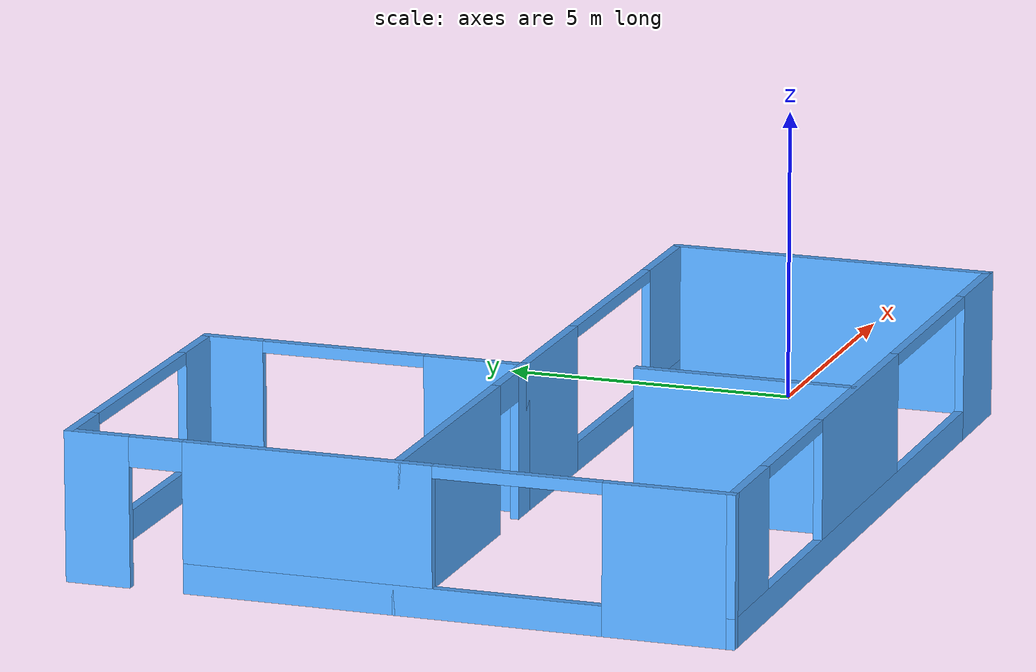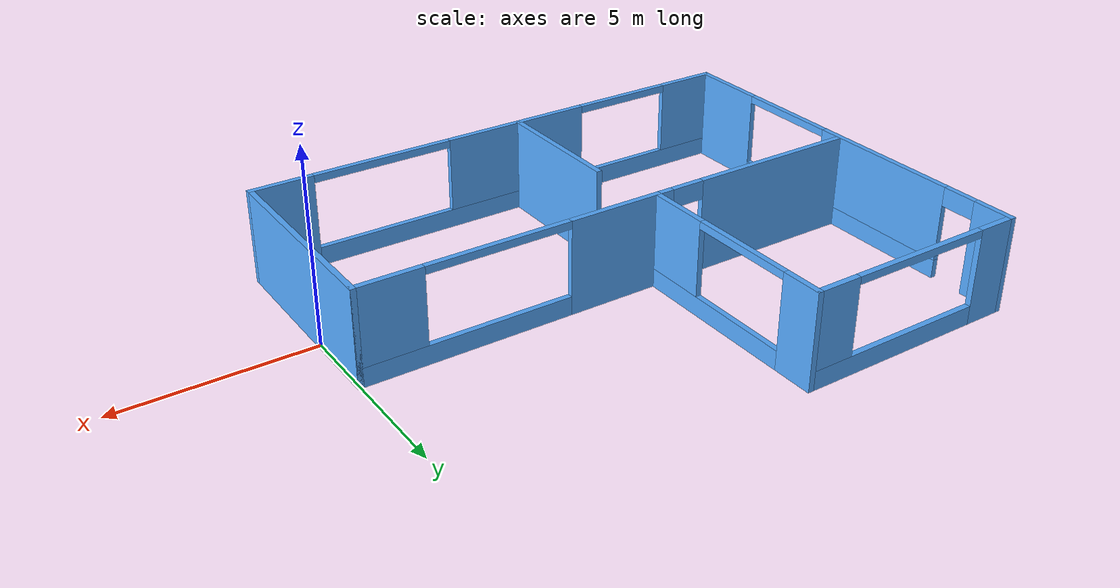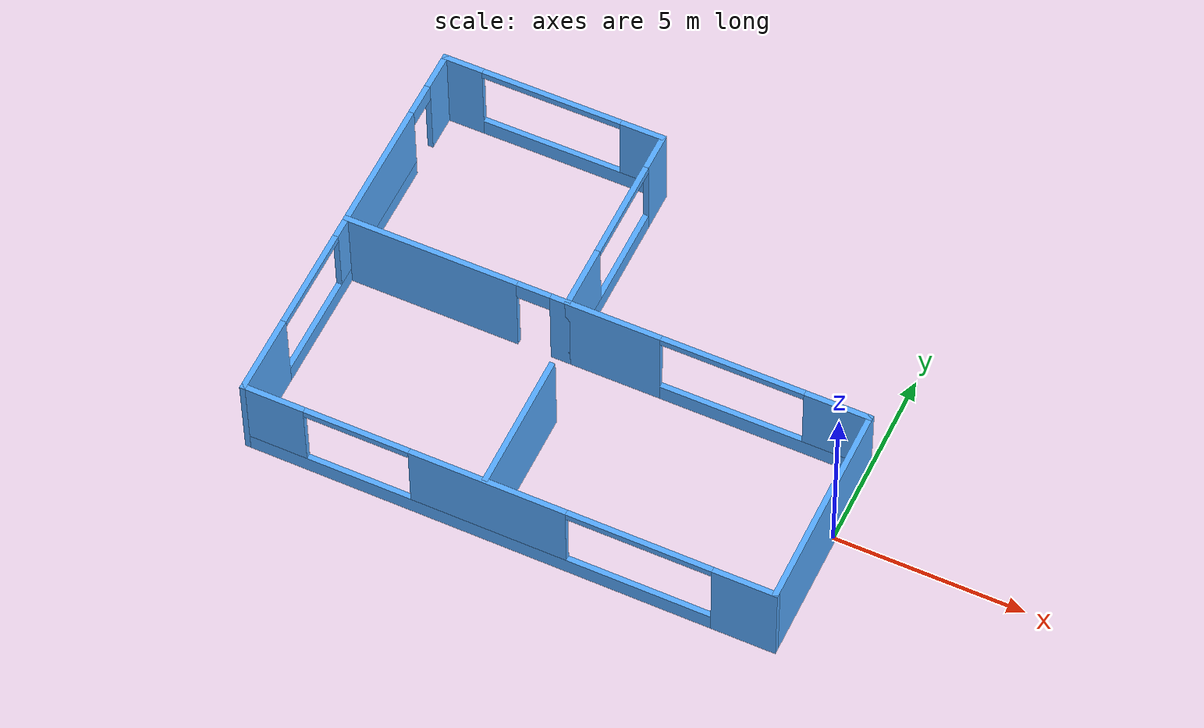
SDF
<?xml version='1.0'?>
<sdf version='1.6'>
  <model name='Building'>
    <pose frame=''>-7 2 0 0 -0 0</pose>
    <link name='Wall_0'>
      <pose frame=''>-4 5.5 0 0 -0 0</pose>
      <visual name='Wall_0_Visual_0'>
        <pose frame=''>-2.51087 0 1.25 0 -0 0</pose>
        <geometry>
          <box>
            <size>1.12826 0.15 2.5</size>
          </box>
        </geometry>
        <material>
          <script>
            <uri>file://media/materials/scripts/gazebo.material</uri>
            <name>Gazebo/Grey</name>
          </script>
          <ambient>0.333333 0.666667 1 1</ambient>
        </material>
        <meta>
          <layer>0</layer>
        </meta>
      </visual>
      <collision name='Wall_0_Collision_0'>
        <geometry>
          <box>
            <size>1.12826 0.15 2.5</size>
          </box>
        </geometry>
        <pose frame=''>-2.51087 0 1.25 0 -0 0</pose>
      </collision>
      <visual name='Wall_0_Visual_1'>
        <pose frame=''>0.564129 0 0.25 0 -0 0</pose>
        <geometry>
          <box>
            <size>5.02174 0.15 0.5</size>
          </box>
        </geometry>
        <material>
          <script>
            <uri>file://media/materials/scripts/gazebo.material</uri>
            <name>Gazebo/Grey</name>
          </script>
          <ambient>0.333333 0.666667 1 1</ambient>
        </material>
        <meta>
          <layer>0</layer>
        </meta>
      </visual>
      <collision name='Wall_0_Collision_1'>
        <geometry>
          <box>
            <size>5.02174 0.15 0.5</size>
          </box>
        </geometry>
        <pose frame=''>0.564129 0 0.25 0 -0 0</pose>
      </collision>
      <visual name='Wall_0_Visual_2'>
        <pose frame=''>2.46413 0 1.5 0 -0 0</pose>
        <geometry>
          <box>
            <size>1.22174 0.15 2</size>
          </box>
        </geometry>
        <material>
          <script>
            <uri>file://media/materials/scripts/gazebo.material</uri>
            <name>Gazebo/Grey</name>
          </script>
          <ambient>0.333333 0.666667 1 1</ambient>
        </material>
        <meta>
          <layer>0</layer>
        </meta>
      </visual>
      <collision name='Wall_0_Collision_2'>
        <geometry>
          <box>
            <size>1.22174 0.15 2</size>
          </box>
        </geometry>
        <pose frame=''>2.46413 0 1.5 0 -0 0</pose>
      </collision>
      <visual name='Wall_0_Visual_3'>
        <pose frame=''>-0.046741 0 2.4 0 -0 0</pose>
        <geometry>
          <box>
            <size>3.8 0.15 0.2</size>
          </box>
        </geometry>
        <material>
          <script>
            <uri>file://media/materials/scripts/gazebo.material</uri>
            <name>Gazebo/Grey</name>
          </script>
          <ambient>0.333333 0.666667 1 1</ambient>
        </material>
        <meta>
          <layer>0</layer>
        </meta>
      </visual>
      <collision name='Wall_0_Collision_3'>
        <geometry>
          <box>
            <size>3.8 0.15 0.2</size>
          </box>
        </geometry>
        <pose frame=''>-0.046741 0 2.4 0 -0 0</pose>
      </collision>
    </link>
    <link name='Wall_1'>
      <pose frame=''>-1 2.75 0 0 0 -1.5708</pose>
      <visual name='Wall_1_Visual_0'>
        <pose frame=''>-2.28702 0 1.25 0 -0 0</pose>
        <geometry>
          <box>
            <size>1.07597 0.15 2.5</size>
          </box>
        </geometry>
        <material>
          <script>
            <uri>file://media/materials/scripts/gazebo.material</uri>
            <name>Gazebo/Grey</name>
          </script>
          <ambient>0.333333 0.666667 1 1</ambient>
        </material>
        <meta>
          <layer>0</layer>
        </meta>
      </visual>
      <collision name='Wall_1_Collision_0'>
        <geometry>
          <box>
            <size>1.07597 0.15 2.5</size>
          </box>
        </geometry>
        <pose frame=''>-2.28702 0 1.25 0 -0 0</pose>
      </collision>
      <visual name='Wall_1_Visual_1'>
        <pose frame=''>0.537983 0 0.25 0 -0 0</pose>
        <geometry>
          <box>
            <size>4.57403 0.15 0.5</size>
          </box>
        </geometry>
        <material>
          <script>
            <uri>file://media/materials/scripts/gazebo.material</uri>
            <name>Gazebo/Grey</name>
          </script>
          <ambient>0.333333 0.666667 1 1</ambient>
        </material>
        <meta>
          <layer>0</layer>
        </meta>
      </visual>
      <collision name='Wall_1_Collision_1'>
        <geometry>
          <box>
            <size>4.57403 0.15 0.5</size>
          </box>
        </geometry>
        <pose frame=''>0.537983 0 0.25 0 -0 0</pose>
      </collision>
      <visual name='Wall_1_Visual_2'>
        <pose frame=''>1.93798 0 1.5 0 -0 0</pose>
        <geometry>
          <box>
            <size>1.77403 0.15 2</size>
          </box>
        </geometry>
        <material>
          <script>
            <uri>file://media/materials/scripts/gazebo.material</uri>
            <name>Gazebo/Grey</name>
          </script>
          <ambient>0.333333 0.666667 1 1</ambient>
        </material>
        <meta>
          <layer>0</layer>
        </meta>
      </visual>
      <collision name='Wall_1_Collision_2'>
        <geometry>
          <box>
            <size>1.77403 0.15 2</size>
          </box>
        </geometry>
        <pose frame=''>1.93798 0 1.5 0 -0 0</pose>
      </collision>
      <visual name='Wall_1_Visual_3'>
        <pose frame=''>-0.349034 0 2.4 0 -0 0</pose>
        <geometry>
          <box>
            <size>2.8 0.15 0.2</size>
          </box>
        </geometry>
        <material>
          <script>
            <uri>file://media/materials/scripts/gazebo.material</uri>
            <name>Gazebo/Grey</name>
          </script>
          <ambient>0.333333 0.666667 1 1</ambient>
        </material>
        <meta>
          <layer>0</layer>
        </meta>
      </visual>
      <collision name='Wall_1_Collision_3'>
        <geometry>
          <box>
            <size>2.8 0.15 0.2</size>
          </box>
        </geometry>
        <pose frame=''>-0.349034 0 2.4 0 -0 0</pose>
      </collision>
    </link>
    <link name='Wall_2'>
      <pose frame=''>3 0 0 0 -0 0</pose>
      <visual name='Wall_2_Visual_0'>
        <pose frame=''>-2.78896 0 1.25 0 -0 0</pose>
        <geometry>
          <box>
            <size>2.57208 0.15 2.5</size>
          </box>
        </geometry>
        <material>
          <script>
            <uri>file://media/materials/scripts/gazebo.material</uri>
            <name>Gazebo/Grey</name>
          </script>
          <ambient>0.333333 0.666667 1 1</ambient>
        </material>
        <meta>
          <layer>0</layer>
        </meta>
      </visual>
      <collision name='Wall_2_Collision_0'>
        <geometry>
          <box>
            <size>2.57208 0.15 2.5</size>
          </box>
        </geometry>
        <pose frame=''>-2.78896 0 1.25 0 -0 0</pose>
      </collision>
      <visual name='Wall_2_Visual_1'>
        <pose frame=''>1.28604 0 0.25 0 -0 0</pose>
        <geometry>
          <box>
            <size>5.57791 0.15 0.5</size>
          </box>
        </geometry>
        <material>
          <script>
            <uri>file://media/materials/scripts/gazebo.material</uri>
            <name>Gazebo/Grey</name>
          </script>
          <ambient>0.333333 0.666667 1 1</ambient>
        </material>
        <meta>
          <layer>0</layer>
        </meta>
      </visual>
      <collision name='Wall_2_Collision_1'>
        <geometry>
          <box>
            <size>5.57791 0.15 0.5</size>
          </box>
        </geometry>
        <pose frame=''>1.28604 0 0.25 0 -0 0</pose>
      </collision>
      <visual name='Wall_2_Visual_2'>
        <pose frame=''>3.18604 0 1.5 0 -0 0</pose>
        <geometry>
          <box>
            <size>1.77791 0.15 2</size>
          </box>
        </geometry>
        <material>
          <script>
            <uri>file://media/materials/scripts/gazebo.material</uri>
            <name>Gazebo/Grey</name>
          </script>
          <ambient>0.333333 0.666667 1 1</ambient>
        </material>
        <meta>
          <layer>0</layer>
        </meta>
      </visual>
      <collision name='Wall_2_Collision_2'>
        <geometry>
          <box>
            <size>1.77791 0.15 2</size>
          </box>
        </geometry>
        <pose frame=''>3.18604 0 1.5 0 -0 0</pose>
      </collision>
      <visual name='Wall_2_Visual_3'>
        <pose frame=''>0.397085 0 2.4 0 -0 0</pose>
        <geometry>
          <box>
            <size>3.8 0.15 0.2</size>
          </box>
        </geometry>
        <material>
          <script>
            <uri>file://media/materials/scripts/gazebo.material</uri>
            <name>Gazebo/Grey</name>
          </script>
          <ambient>0.333333 0.666667 1 1</ambient>
        </material>
        <meta>
          <layer>0</layer>
        </meta>
      </visual>
      <collision name='Wall_2_Collision_3'>
        <geometry>
          <box>
            <size>3.8 0.15 0.2</size>
          </box>
        </geometry>
        <pose frame=''>0.397085 0 2.4 0 -0 0</pose>
      </collision>
    </link>
    <link name='Wall_3'>
      <collision name='Wall_3_Collision'>
        <geometry>
          <box>
            <size>5.65 0.15 2.5</size>
          </box>
        </geometry>
        <pose frame=''>0 0 1.25 0 -0 0</pose>
      </collision>
      <visual name='Wall_3_Visual'>
        <pose frame=''>0 0 1.25 0 -0 0</pose>
        <geometry>
          <box>
            <size>5.65 0.15 2.5</size>
          </box>
        </geometry>
        <material>
          <script>
            <uri>file://media/materials/scripts/gazebo.material</uri>
            <name>Gazebo/Grey</name>
          </script>
          <ambient>0.333333 0.666667 1 1</ambient>
        </material>
        <meta>
          <layer>0</layer>
        </meta>
      </visual>
      <pose frame=''>7 -2.75 0 0 0 -1.5708</pose>
    </link>
    <link name='Wall_4'>
      <pose frame=''>0 -5.5 0 0 -0 3.14159</pose>
      <visual name='Wall_4_Visual_0'>
        <pose frame=''>-6.2265 0 1.25 0 -0 0</pose>
        <geometry>
          <box>
            <size>1.697 0.15 2.5</size>
          </box>
        </geometry>
        <material>
          <script>
            <uri>file://media/materials/scripts/gazebo.material</uri>
            <name>Gazebo/Grey</name>
          </script>
          <ambient>0.333333 0.666667 1 1</ambient>
        </material>
        <meta>
          <layer>0</layer>
        </meta>
      </visual>
      <collision name='Wall_4_Collision_0'>
        <geometry>
          <box>
            <size>1.697 0.15 2.5</size>
          </box>
        </geometry>
        <pose frame=''>-6.2265 0 1.25 0 -0 0</pose>
      </collision>
      <visual name='Wall_4_Visual_1'>
        <pose frame=''>0.8485 0 0.25 0 -0 0</pose>
        <geometry>
          <box>
            <size>12.453 0.15 0.5</size>
          </box>
        </geometry>
        <material>
          <script>
            <uri>file://media/materials/scripts/gazebo.material</uri>
            <name>Gazebo/Grey</name>
          </script>
          <ambient>0.333333 0.666667 1 1</ambient>
        </material>
        <meta>
          <layer>0</layer>
        </meta>
      </visual>
      <collision name='Wall_4_Collision_1'>
        <geometry>
          <box>
            <size>12.453 0.15 0.5</size>
          </box>
        </geometry>
        <pose frame=''>0.8485 0 0.25 0 -0 0</pose>
      </collision>
      <visual name='Wall_4_Visual_2'>
        <pose frame=''>0.493915 0 1.5 0 -0 0</pose>
        <geometry>
          <box>
            <size>4.14383 0.15 2</size>
          </box>
        </geometry>
        <material>
          <script>
            <uri>file://media/materials/scripts/gazebo.material</uri>
            <name>Gazebo/Grey</name>
          </script>
          <ambient>0.333333 0.666667 1 1</ambient>
        </material>
        <meta>
          <layer>0</layer>
        </meta>
      </visual>
      <collision name='Wall_4_Collision_2'>
        <geometry>
          <box>
            <size>4.14383 0.15 2</size>
          </box>
        </geometry>
        <pose frame=''>0.493915 0 1.5 0 -0 0</pose>
      </collision>
      <visual name='Wall_4_Visual_3'>
        <pose frame=''>6.22042 0 1.5 0 -0 0</pose>
        <geometry>
          <box>
            <size>1.70917 0.15 2</size>
          </box>
        </geometry>
        <material>
          <script>
            <uri>file://media/materials/scripts/gazebo.material</uri>
            <name>Gazebo/Grey</name>
          </script>
          <ambient>0.333333 0.666667 1 1</ambient>
        </material>
        <meta>
          <layer>0</layer>
        </meta>
      </visual>
      <collision name='Wall_4_Collision_3'>
        <geometry>
          <box>
            <size>1.70917 0.15 2</size>
          </box>
        </geometry>
        <pose frame=''>6.22042 0 1.5 0 -0 0</pose>
      </collision>
      <visual name='Wall_4_Visual_4'>
        <pose frame=''>-3.478 0 2.4 0 -0 0</pose>
        <geometry>
          <box>
            <size>3.8 0.15 0.2</size>
          </box>
        </geometry>
        <material>
          <script>
            <uri>file://media/materials/scripts/gazebo.material</uri>
            <name>Gazebo/Grey</name>
          </script>
          <ambient>0.333333 0.666667 1 1</ambient>
        </material>
        <meta>
          <layer>0</layer>
        </meta>
      </visual>
      <collision name='Wall_4_Collision_4'>
        <geometry>
          <box>
            <size>3.8 0.15 0.2</size>
          </box>
        </geometry>
        <pose frame=''>-3.478 0 2.4 0 -0 0</pose>
      </collision>
      <visual name='Wall_4_Visual_5'>
        <pose frame=''>3.96583 0 2.4 0 -0 0</pose>
        <geometry>
          <box>
            <size>2.8 0.15 0.2</size>
          </box>
        </geometry>
        <material>
          <script>
            <uri>file://media/materials/scripts/gazebo.material</uri>
            <name>Gazebo/Grey</name>
          </script>
          <ambient>0.333333 0.666667 1 1</ambient>
        </material>
        <meta>
          <layer>0</layer>
        </meta>
      </visual>
      <collision name='Wall_4_Collision_5'>
        <geometry>
          <box>
            <size>2.8 0.15 0.2</size>
          </box>
        </geometry>
        <pose frame=''>3.96583 0 2.4 0 -0 0</pose>
      </collision>
    </link>
    <link name='Wall_5'>
      <pose frame=''>-7 0 0 0 -0 1.5708</pose>
      <visual name='Wall_5_Visual_0'>
        <pose frame=''>-4.48668 0 1.25 0 -0 0</pose>
        <geometry>
          <box>
            <size>2.17663 0.15 2.5</size>
          </box>
        </geometry>
        <material>
          <script>
            <uri>file://media/materials/scripts/gazebo.material</uri>
            <name>Gazebo/Grey</name>
          </script>
          <ambient>0.333333 0.666667 1 1</ambient>
        </material>
        <meta>
          <layer>0</layer>
        </meta>
      </visual>
      <collision name='Wall_5_Collision_0'>
        <geometry>
          <box>
            <size>2.17663 0.15 2.5</size>
          </box>
        </geometry>
        <pose frame=''>-4.48668 0 1.25 0 -0 0</pose>
      </collision>
      <visual name='Wall_5_Visual_1'>
        <pose frame=''>5.02726 0 1.25 0 -0 0</pose>
        <geometry>
          <box>
            <size>1.09549 0.15 2.5</size>
          </box>
        </geometry>
        <material>
          <script>
            <uri>file://media/materials/scripts/gazebo.material</uri>
            <name>Gazebo/Grey</name>
          </script>
          <ambient>0.333333 0.666667 1 1</ambient>
        </material>
        <meta>
          <layer>0</layer>
        </meta>
      </visual>
      <collision name='Wall_5_Collision_1'>
        <geometry>
          <box>
            <size>1.09549 0.15 2.5</size>
          </box>
        </geometry>
        <pose frame=''>5.02726 0 1.25 0 -0 0</pose>
      </collision>
      <visual name='Wall_5_Visual_2'>
        <pose frame=''>0.090572 0 0.25 0 -0 0</pose>
        <geometry>
          <box>
            <size>6.97788 0.15 0.5</size>
          </box>
        </geometry>
        <material>
          <script>
            <uri>file://media/materials/scripts/gazebo.material</uri>
            <name>Gazebo/Grey</name>
          </script>
          <ambient>0.333333 0.666667 1 1</ambient>
        </material>
        <meta>
          <layer>0</layer>
        </meta>
      </visual>
      <collision name='Wall_5_Collision_2'>
        <geometry>
          <box>
            <size>6.97788 0.15 0.5</size>
          </box>
        </geometry>
        <pose frame=''>0.090572 0 0.25 0 -0 0</pose>
      </collision>
      <visual name='Wall_5_Visual_3'>
        <pose frame=''>1.49057 0 1.5 0 -0 0</pose>
        <geometry>
          <box>
            <size>4.17788 0.15 2</size>
          </box>
        </geometry>
        <material>
          <script>
            <uri>file://media/materials/scripts/gazebo.material</uri>
            <name>Gazebo/Grey</name>
          </script>
          <ambient>0.333333 0.666667 1 1</ambient>
        </material>
        <meta>
          <layer>0</layer>
        </meta>
      </visual>
      <collision name='Wall_5_Collision_3'>
        <geometry>
          <box>
            <size>4.17788 0.15 2</size>
          </box>
        </geometry>
        <pose frame=''>1.49057 0 1.5 0 -0 0</pose>
      </collision>
      <visual name='Wall_5_Visual_4'>
        <pose frame=''>4.02951 0 2.25 0 -0 0</pose>
        <geometry>
          <box>
            <size>0.9 0.15 0.5</size>
          </box>
        </geometry>
        <material>
          <script>
            <uri>file://media/materials/scripts/gazebo.material</uri>
            <name>Gazebo/Grey</name>
          </script>
          <ambient>0.333333 0.666667 1 1</ambient>
        </material>
        <meta>
          <layer>0</layer>
        </meta>
      </visual>
      <collision name='Wall_5_Collision_4'>
        <geometry>
          <box>
            <size>0.9 0.15 0.5</size>
          </box>
        </geometry>
        <pose frame=''>4.02951 0 2.25 0 -0 0</pose>
      </collision>
      <visual name='Wall_5_Visual_5'>
        <pose frame=''>-1.99837 0 2.4 0 -0 0</pose>
        <geometry>
          <box>
            <size>2.8 0.15 0.2</size>
          </box>
        </geometry>
        <material>
          <script>
            <uri>file://media/materials/scripts/gazebo.material</uri>
            <name>Gazebo/Grey</name>
          </script>
          <ambient>0.333333 0.666667 1 1</ambient>
        </material>
        <meta>
          <layer>0</layer>
        </meta>
      </visual>
      <collision name='Wall_5_Collision_5'>
        <geometry>
          <box>
            <size>2.8 0.15 0.2</size>
          </box>
        </geometry>
        <pose frame=''>-1.99837 0 2.4 0 -0 0</pose>
      </collision>
    </link>
    <link name='Wall_7'>
      <collision name='Wall_7_Collision'>
        <geometry>
          <box>
            <size>3.75 0.15 2.5</size>
          </box>
        </geometry>
        <pose frame=''>0 0 1.25 0 -0 0</pose>
      </collision>
      <visual name='Wall_7_Visual'>
        <pose frame=''>0 0 1.25 0 -0 0</pose>
        <geometry>
          <box>
            <size>3.75 0.15 2.5</size>
          </box>
        </geometry>
        <material>
          <script>
            <uri>file://media/materials/scripts/gazebo.material</uri>
            <name>Gazebo/Grey</name>
          </script>
          <ambient>0.333333 0.666667 1 1</ambient>
        </material>
        <meta>
          <layer>0</layer>
        </meta>
      </visual>
      <pose frame=''>-0.567561 -3.63655 0 0 0 -1.5708</pose>
    </link>
    <link name='Wall_9'>
      <pose frame=''>-4 0 0 0 -0 0</pose>
      <visual name='Wall_9_Visual_0'>
        <pose frame=''>-0.713798 0 1.25 0 -0 0</pose>
        <geometry>
          <box>
            <size>4.7224 0.15 2.5</size>
          </box>
        </geometry>
        <material>
          <script>
            <uri>file://media/materials/scripts/gazebo.material</uri>
            <name>Gazebo/Grey</name>
          </script>
          <ambient>0.333333 0.666667 1 1</ambient>
        </material>
        <meta>
          <layer>0</layer>
        </meta>
      </visual>
      <collision name='Wall_9_Collision_0'>
        <geometry>
          <box>
            <size>4.7224 0.15 2.5</size>
          </box>
        </geometry>
        <pose frame=''>-0.713798 0 1.25 0 -0 0</pose>
      </collision>
      <visual name='Wall_9_Visual_1'>
        <pose frame=''>2.8112 0 1.25 0 -0 0</pose>
        <geometry>
          <box>
            <size>0.527596 0.15 2.5</size>
          </box>
        </geometry>
        <material>
          <script>
            <uri>file://media/materials/scripts/gazebo.material</uri>
            <name>Gazebo/Grey</name>
          </script>
          <ambient>0.333333 0.666667 1 1</ambient>
        </material>
        <meta>
          <layer>0</layer>
        </meta>
      </visual>
      <collision name='Wall_9_Collision_1'>
        <geometry>
          <box>
            <size>0.527596 0.15 2.5</size>
          </box>
        </geometry>
        <pose frame=''>2.8112 0 1.25 0 -0 0</pose>
      </collision>
      <visual name='Wall_9_Visual_2'>
        <pose frame=''>2.0974 0 2.25 0 -0 0</pose>
        <geometry>
          <box>
            <size>0.9 0.15 0.5</size>
          </box>
        </geometry>
        <material>
          <script>
            <uri>file://media/materials/scripts/gazebo.material</uri>
            <name>Gazebo/Grey</name>
          </script>
          <ambient>0.333333 0.666667 1 1</ambient>
        </material>
        <meta>
          <layer>0</layer>
        </meta>
      </visual>
      <collision name='Wall_9_Collision_2'>
        <geometry>
          <box>
            <size>0.9 0.15 0.5</size>
          </box>
        </geometry>
        <pose frame=''>2.0974 0 2.25 0 -0 0</pose>
      </collision>
    </link>
    <static>1</static>
  </model>
</sdf>
